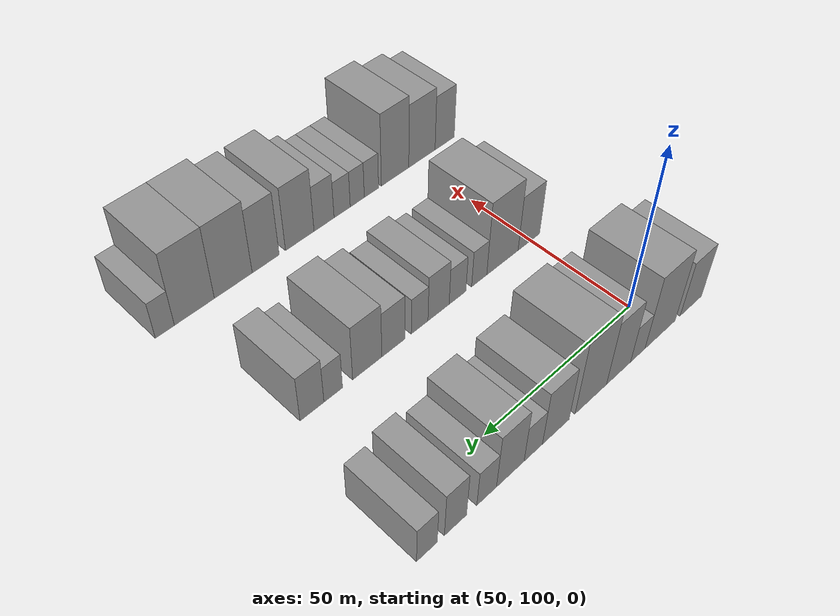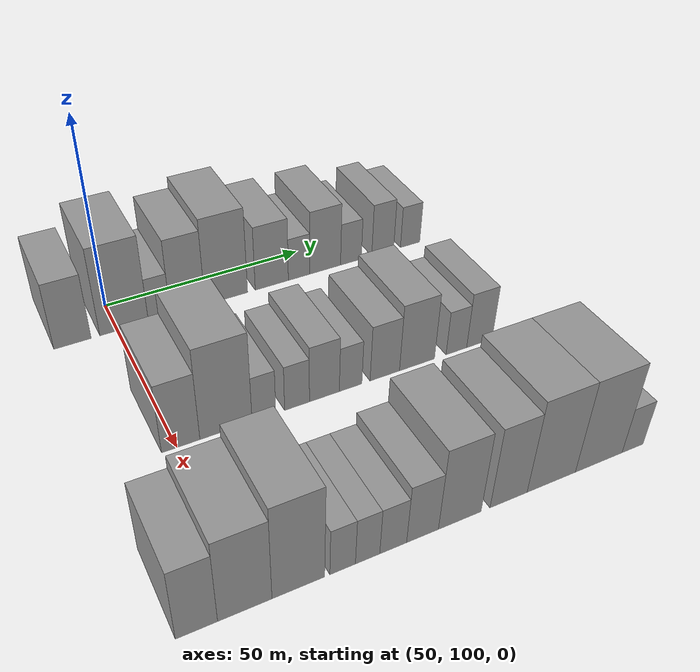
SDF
<sdf version="1.6">
 <world name="default">
  <model name="building_56">
   <static>1</static>
   <pose>50.0000 89.5916 0 0.000000 0.000000 0.000000</pose>
   <link name="link">
    <pose>0 0 9.00 0 0 0</pose>
    <collision name="collision"><geometry><box><size>20.0000 8.5362 18.0000</size></box></geometry></collision>
    <visual name="visual">
     <cast_shadows>0</cast_shadows>
     <geometry><box><size>20.0000 8.5362 18.0000</size></box></geometry>
     <material>
      <script>
       <uri>model://grey_wall/materials/scripts</uri>
       <uri>model://grey_wall/materials/textures</uri>
       <name>vrc/grey_wall</name>
      </script>
     </material>
    </visual>
   </link>
  </model>
  <model name="building_57">
   <static>1</static>
   <pose>50.0000 101.6315 0 0.000000 0.000000 0.000000</pose>
   <link name="link">
    <pose>0 0 12.00 0 0 0</pose>
    <collision name="collision"><geometry><box><size>20.0000 11.5437 24.0000</size></box></geometry></collision>
    <visual name="visual">
     <cast_shadows>0</cast_shadows>
     <geometry><box><size>20.0000 11.5437 24.0000</size></box></geometry>
     <material>
      <script>
       <uri>model://grey_wall/materials/scripts</uri>
       <uri>model://grey_wall/materials/textures</uri>
       <name>vrc/grey_wall</name>
      </script>
     </material>
    </visual>
   </link>
  </model>
  <model name="building_58">
   <static>1</static>
   <pose>50.0000 110.0835 0 0.000000 0.000000 0.000000</pose>
   <link name="link">
    <pose>0 0 6.00 0 0 0</pose>
    <collision name="collision"><geometry><box><size>20.0000 5.3604 12.0000</size></box></geometry></collision>
    <visual name="visual">
     <cast_shadows>0</cast_shadows>
     <geometry><box><size>20.0000 5.3604 12.0000</size></box></geometry>
     <material>
      <script>
       <uri>model://grey_wall/materials/scripts</uri>
       <uri>model://grey_wall/materials/textures</uri>
       <name>vrc/grey_wall</name>
      </script>
     </material>
    </visual>
   </link>
  </model>
  <model name="building_59">
   <static>1</static>
   <pose>50.0000 117.0794 0 0.000000 0.000000 0.000000</pose>
   <link name="link">
    <pose>0 0 10.50 0 0 0</pose>
    <collision name="collision"><geometry><box><size>20.0000 8.6314 21.0000</size></box></geometry></collision>
    <visual name="visual">
     <cast_shadows>0</cast_shadows>
     <geometry><box><size>20.0000 8.6314 21.0000</size></box></geometry>
     <material>
      <script>
       <uri>model://grey_wall/materials/scripts</uri>
       <uri>model://grey_wall/materials/textures</uri>
       <name>vrc/grey_wall</name>
      </script>
     </material>
    </visual>
   </link>
  </model>
  <model name="building_60">
   <static>1</static>
   <pose>50.0000 126.8389 0 0.000000 0.000000 0.000000</pose>
   <link name="link">
    <pose>0 0 12.00 0 0 0</pose>
    <collision name="collision"><geometry><box><size>20.0000 10.8875 24.0000</size></box></geometry></collision>
    <visual name="visual">
     <cast_shadows>0</cast_shadows>
     <geometry><box><size>20.0000 10.8875 24.0000</size></box></geometry>
     <material>
      <script>
       <uri>model://grey_wall/materials/scripts</uri>
       <uri>model://grey_wall/materials/textures</uri>
       <name>vrc/grey_wall</name>
      </script>
     </material>
    </visual>
   </link>
  </model>
  <model name="building_61">
   <static>1</static>
   <pose>50.0000 138.6754 0 0.000000 0.000000 0.000000</pose>
   <link name="link">
    <pose>0 0 9.00 0 0 0</pose>
    <collision name="collision"><geometry><box><size>20.0000 8.7856 18.0000</size></box></geometry></collision>
    <visual name="visual">
     <cast_shadows>0</cast_shadows>
     <geometry><box><size>20.0000 8.7856 18.0000</size></box></geometry>
     <material>
      <script>
       <uri>model://grey_wall/materials/scripts</uri>
       <uri>model://grey_wall/materials/textures</uri>
       <name>vrc/grey_wall</name>
      </script>
     </material>
    </visual>
   </link>
  </model>
  <model name="building_62">
   <static>1</static>
   <pose>50.0000 145.9898 0 0.000000 0.000000 0.000000</pose>
   <link name="link">
    <pose>0 0 6.00 0 0 0</pose>
    <collision name="collision"><geometry><box><size>20.0000 5.8431 12.0000</size></box></geometry></collision>
    <visual name="visual">
     <cast_shadows>0</cast_shadows>
     <geometry><box><size>20.0000 5.8431 12.0000</size></box></geometry>
     <material>
      <script>
       <uri>model://grey_wall/materials/scripts</uri>
       <uri>model://grey_wall/materials/textures</uri>
       <name>vrc/grey_wall</name>
      </script>
     </material>
    </visual>
   </link>
  </model>
  <model name="building_63">
   <static>1</static>
   <pose>50.0000 153.1606 0 0.000000 0.000000 0.000000</pose>
   <link name="link">
    <pose>0 0 9.00 0 0 0</pose>
    <collision name="collision"><geometry><box><size>20.0000 8.4984 18.0000</size></box></geometry></collision>
    <visual name="visual">
     <cast_shadows>0</cast_shadows>
     <geometry><box><size>20.0000 8.4984 18.0000</size></box></geometry>
     <material>
      <script>
       <uri>model://grey_wall/materials/scripts</uri>
       <uri>model://grey_wall/materials/textures</uri>
       <name>vrc/grey_wall</name>
      </script>
     </material>
    </visual>
   </link>
  </model>
  <model name="building_64">
   <static>1</static>
   <pose>50.0000 160.3463 0 0.000000 0.000000 0.000000</pose>
   <link name="link">
    <pose>0 0 6.00 0 0 0</pose>
    <collision name="collision"><geometry><box><size>20.0000 5.8730 12.0000</size></box></geometry></collision>
    <visual name="visual">
     <cast_shadows>0</cast_shadows>
     <geometry><box><size>20.0000 5.8730 12.0000</size></box></geometry>
     <material>
      <script>
       <uri>model://grey_wall/materials/scripts</uri>
       <uri>model://grey_wall/materials/textures</uri>
       <name>vrc/grey_wall</name>
      </script>
     </material>
    </visual>
   </link>
  </model>
  <model name="building_65">
   <static>1</static>
   <pose>50.0000 169.4578 0 0.000000 0.000000 0.000000</pose>
   <link name="link">
    <pose>0 0 7.50 0 0 0</pose>
    <collision name="collision"><geometry><box><size>20.0000 6.3501 15.0000</size></box></geometry></collision>
    <visual name="visual">
     <cast_shadows>0</cast_shadows>
     <geometry><box><size>20.0000 6.3501 15.0000</size></box></geometry>
     <material>
      <script>
       <uri>model://grey_wall/materials/scripts</uri>
       <uri>model://grey_wall/materials/textures</uri>
       <name>vrc/grey_wall</name>
      </script>
     </material>
    </visual>
   </link>
  </model>
  <model name="building_66">
   <static>1</static>
   <pose>50.0000 177.4949 0 0.000000 0.000000 0.000000</pose>
   <link name="link">
    <pose>0 0 6.00 0 0 0</pose>
    <collision name="collision"><geometry><box><size>20.0000 5.7241 12.0000</size></box></geometry></collision>
    <visual name="visual">
     <cast_shadows>0</cast_shadows>
     <geometry><box><size>20.0000 5.7241 12.0000</size></box></geometry>
     <material>
      <script>
       <uri>model://grey_wall/materials/scripts</uri>
       <uri>model://grey_wall/materials/textures</uri>
       <name>vrc/grey_wall</name>
      </script>
     </material>
    </visual>
   </link>
  </model>
  <model name="building_145">
   <static>1</static>
   <pose>90.0000 100.8245 0 0.000000 0.000000 0.000000</pose>
   <link name="link">
    <pose>0 0 9.00 0 0 0</pose>
    <collision name="collision"><geometry><box><size>20.0000 8.1048 18.0000</size></box></geometry></collision>
    <visual name="visual">
     <cast_shadows>0</cast_shadows>
     <geometry><box><size>20.0000 8.1048 18.0000</size></box></geometry>
     <material>
      <script>
       <uri>model://grey_wall/materials/scripts</uri>
       <uri>model://grey_wall/materials/textures</uri>
       <name>vrc/grey_wall</name>
      </script>
     </material>
    </visual>
   </link>
  </model>
  <model name="building_146">
   <static>1</static>
   <pose>90.0000 110.5733 0 0.000000 0.000000 0.000000</pose>
   <link name="link">
    <pose>0 0 12.00 0 0 0</pose>
    <collision name="collision"><geometry><box><size>20.0000 11.3928 24.0000</size></box></geometry></collision>
    <visual name="visual">
     <cast_shadows>0</cast_shadows>
     <geometry><box><size>20.0000 11.3928 24.0000</size></box></geometry>
     <material>
      <script>
       <uri>model://grey_wall/materials/scripts</uri>
       <uri>model://grey_wall/materials/textures</uri>
       <name>vrc/grey_wall</name>
      </script>
     </material>
    </visual>
   </link>
  </model>
  <model name="building_147">
   <static>1</static>
   <pose>90.0000 118.9317 0 0.000000 0.000000 0.000000</pose>
   <link name="link">
    <pose>0 0 6.00 0 0 0</pose>
    <collision name="collision"><geometry><box><size>20.0000 5.3240 12.0000</size></box></geometry></collision>
    <visual name="visual">
     <cast_shadows>0</cast_shadows>
     <geometry><box><size>20.0000 5.3240 12.0000</size></box></geometry>
     <material>
      <script>
       <uri>model://grey_wall/materials/scripts</uri>
       <uri>model://grey_wall/materials/textures</uri>
       <name>vrc/grey_wall</name>
      </script>
     </material>
    </visual>
   </link>
  </model>
  <model name="building_148">
   <static>1</static>
   <pose>90.0000 126.4588 0 0.000000 0.000000 0.000000</pose>
   <link name="link">
    <pose>0 0 6.00 0 0 0</pose>
    <collision name="collision"><geometry><box><size>20.0000 5.7303 12.0000</size></box></geometry></collision>
    <visual name="visual">
     <cast_shadows>0</cast_shadows>
     <geometry><box><size>20.0000 5.7303 12.0000</size></box></geometry>
     <material>
      <script>
       <uri>model://grey_wall/materials/scripts</uri>
       <uri>model://grey_wall/materials/textures</uri>
       <name>vrc/grey_wall</name>
      </script>
     </material>
    </visual>
   </link>
  </model>
  <model name="building_149">
   <static>1</static>
   <pose>90.0000 132.8490 0 0.000000 0.000000 0.000000</pose>
   <link name="link">
    <pose>0 0 7.50 0 0 0</pose>
    <collision name="collision"><geometry><box><size>20.0000 7.0500 15.0000</size></box></geometry></collision>
    <visual name="visual">
     <cast_shadows>0</cast_shadows>
     <geometry><box><size>20.0000 7.0500 15.0000</size></box></geometry>
     <material>
      <script>
       <uri>model://grey_wall/materials/scripts</uri>
       <uri>model://grey_wall/materials/textures</uri>
       <name>vrc/grey_wall</name>
      </script>
     </material>
    </visual>
   </link>
  </model>
  <model name="building_150">
   <static>1</static>
   <pose>90.0000 139.0963 0 0.000000 0.000000 0.000000</pose>
   <link name="link">
    <pose>0 0 6.00 0 0 0</pose>
    <collision name="collision"><geometry><box><size>20.0000 5.4446 12.0000</size></box></geometry></collision>
    <visual name="visual">
     <cast_shadows>0</cast_shadows>
     <geometry><box><size>20.0000 5.4446 12.0000</size></box></geometry>
     <material>
      <script>
       <uri>model://grey_wall/materials/scripts</uri>
       <uri>model://grey_wall/materials/textures</uri>
       <name>vrc/grey_wall</name>
      </script>
     </material>
    </visual>
   </link>
  </model>
  <model name="building_151">
   <static>1</static>
   <pose>90.0000 147.4627 0 0.000000 0.000000 0.000000</pose>
   <link name="link">
    <pose>0 0 7.50 0 0 0</pose>
    <collision name="collision"><geometry><box><size>20.0000 7.2884 15.0000</size></box></geometry></collision>
    <visual name="visual">
     <cast_shadows>0</cast_shadows>
     <geometry><box><size>20.0000 7.2884 15.0000</size></box></geometry>
     <material>
      <script>
       <uri>model://grey_wall/materials/scripts</uri>
       <uri>model://grey_wall/materials/textures</uri>
       <name>vrc/grey_wall</name>
      </script>
     </material>
    </visual>
   </link>
  </model>
  <model name="building_152">
   <static>1</static>
   <pose>90.0000 155.5599 0 0.000000 0.000000 0.000000</pose>
   <link name="link">
    <pose>0 0 9.00 0 0 0</pose>
    <collision name="collision"><geometry><box><size>20.0000 8.9059 18.0000</size></box></geometry></collision>
    <visual name="visual">
     <cast_shadows>0</cast_shadows>
     <geometry><box><size>20.0000 8.9059 18.0000</size></box></geometry>
     <material>
      <script>
       <uri>model://grey_wall/materials/scripts</uri>
       <uri>model://grey_wall/materials/textures</uri>
       <name>vrc/grey_wall</name>
      </script>
     </material>
    </visual>
   </link>
  </model>
  <model name="building_153">
   <static>1</static>
   <pose>90.0000 165.7264 0 0.000000 0.000000 0.000000</pose>
   <link name="link">
    <pose>0 0 6.00 0 0 0</pose>
    <collision name="collision"><geometry><box><size>20.0000 5.4270 12.0000</size></box></geometry></collision>
    <visual name="visual">
     <cast_shadows>0</cast_shadows>
     <geometry><box><size>20.0000 5.4270 12.0000</size></box></geometry>
     <material>
      <script>
       <uri>model://grey_wall/materials/scripts</uri>
       <uri>model://grey_wall/materials/textures</uri>
       <name>vrc/grey_wall</name>
      </script>
     </material>
    </visual>
   </link>
  </model>
  <model name="building_154">
   <static>1</static>
   <pose>90.0000 171.8518 0 0.000000 0.000000 0.000000</pose>
   <link name="link">
    <pose>0 0 7.50 0 0 0</pose>
    <collision name="collision"><geometry><box><size>20.0000 6.8237 15.0000</size></box></geometry></collision>
    <visual name="visual">
     <cast_shadows>0</cast_shadows>
     <geometry><box><size>20.0000 6.8237 15.0000</size></box></geometry>
     <material>
      <script>
       <uri>model://grey_wall/materials/scripts</uri>
       <uri>model://grey_wall/materials/textures</uri>
       <name>vrc/grey_wall</name>
      </script>
     </material>
    </visual>
   </link>
  </model>
  <model name="building_226">
   <static>1</static>
   <pose>130.0000 89.0867 0 0.000000 0.000000 0.000000</pose>
   <link name="link">
    <pose>0 0 9.00 0 0 0</pose>
    <collision name="collision"><geometry><box><size>20.0000 7.4645 18.0000</size></box></geometry></collision>
    <visual name="visual">
     <cast_shadows>0</cast_shadows>
     <geometry><box><size>20.0000 7.4645 18.0000</size></box></geometry>
     <material>
      <script>
       <uri>model://grey_wall/materials/scripts</uri>
       <uri>model://grey_wall/materials/textures</uri>
       <name>vrc/grey_wall</name>
      </script>
     </material>
    </visual>
   </link>
  </model>
  <model name="building_227">
   <static>1</static>
   <pose>130.0000 97.7949 0 0.000000 0.000000 0.000000</pose>
   <link name="link">
    <pose>0 0 10.50 0 0 0</pose>
    <collision name="collision"><geometry><box><size>20.0000 9.9520 21.0000</size></box></geometry></collision>
    <visual name="visual">
     <cast_shadows>0</cast_shadows>
     <geometry><box><size>20.0000 9.9520 21.0000</size></box></geometry>
     <material>
      <script>
       <uri>model://grey_wall/materials/scripts</uri>
       <uri>model://grey_wall/materials/textures</uri>
       <name>vrc/grey_wall</name>
      </script>
     </material>
    </visual>
   </link>
  </model>
  <model name="building_228">
   <static>1</static>
   <pose>130.0000 107.8044 0 0.000000 0.000000 0.000000</pose>
   <link name="link">
    <pose>0 0 12.00 0 0 0</pose>
    <collision name="collision"><geometry><box><size>20.0000 10.0669 24.0000</size></box></geometry></collision>
    <visual name="visual">
     <cast_shadows>0</cast_shadows>
     <geometry><box><size>20.0000 10.0669 24.0000</size></box></geometry>
     <material>
      <script>
       <uri>model://grey_wall/materials/scripts</uri>
       <uri>model://grey_wall/materials/textures</uri>
       <name>vrc/grey_wall</name>
      </script>
     </material>
    </visual>
   </link>
  </model>
  <model name="building_229">
   <static>1</static>
   <pose>130.0000 116.3673 0 0.000000 0.000000 0.000000</pose>
   <link name="link">
    <pose>0 0 6.00 0 0 0</pose>
    <collision name="collision"><geometry><box><size>20.0000 5.0588 12.0000</size></box></geometry></collision>
    <visual name="visual">
     <cast_shadows>0</cast_shadows>
     <geometry><box><size>20.0000 5.0588 12.0000</size></box></geometry>
     <material>
      <script>
       <uri>model://grey_wall/materials/scripts</uri>
       <uri>model://grey_wall/materials/textures</uri>
       <name>vrc/grey_wall</name>
      </script>
     </material>
    </visual>
   </link>
  </model>
  <model name="building_230">
   <static>1</static>
   <pose>130.0000 121.3518 0 0.000000 0.000000 0.000000</pose>
   <link name="link">
    <pose>0 0 6.00 0 0 0</pose>
    <collision name="collision"><geometry><box><size>20.0000 4.9102 12.0000</size></box></geometry></collision>
    <visual name="visual">
     <cast_shadows>0</cast_shadows>
     <geometry><box><size>20.0000 4.9102 12.0000</size></box></geometry>
     <material>
      <script>
       <uri>model://grey_wall/materials/scripts</uri>
       <uri>model://grey_wall/materials/textures</uri>
       <name>vrc/grey_wall</name>
      </script>
     </material>
    </visual>
   </link>
  </model>
  <model name="building_231">
   <static>1</static>
   <pose>130.0000 126.5766 0 0.000000 0.000000 0.000000</pose>
   <link name="link">
    <pose>0 0 6.00 0 0 0</pose>
    <collision name="collision"><geometry><box><size>20.0000 5.5394 12.0000</size></box></geometry></collision>
    <visual name="visual">
     <cast_shadows>0</cast_shadows>
     <geometry><box><size>20.0000 5.5394 12.0000</size></box></geometry>
     <material>
      <script>
       <uri>model://grey_wall/materials/scripts</uri>
       <uri>model://grey_wall/materials/textures</uri>
       <name>vrc/grey_wall</name>
      </script>
     </material>
    </visual>
   </link>
  </model>
  <model name="building_232">
   <static>1</static>
   <pose>130.0000 132.7032 0 0.000000 0.000000 0.000000</pose>
   <link name="link">
    <pose>0 0 7.50 0 0 0</pose>
    <collision name="collision"><geometry><box><size>20.0000 6.7139 15.0000</size></box></geometry></collision>
    <visual name="visual">
     <cast_shadows>0</cast_shadows>
     <geometry><box><size>20.0000 6.7139 15.0000</size></box></geometry>
     <material>
      <script>
       <uri>model://grey_wall/materials/scripts</uri>
       <uri>model://grey_wall/materials/textures</uri>
       <name>vrc/grey_wall</name>
      </script>
     </material>
    </visual>
   </link>
  </model>
  <model name="building_233">
   <static>1</static>
   <pose>130.0000 140.7101 0 0.000000 0.000000 0.000000</pose>
   <link name="link">
    <pose>0 0 10.50 0 0 0</pose>
    <collision name="collision"><geometry><box><size>20.0000 9.3000 21.0000</size></box></geometry></collision>
    <visual name="visual">
     <cast_shadows>0</cast_shadows>
     <geometry><box><size>20.0000 9.3000 21.0000</size></box></geometry>
     <material>
      <script>
       <uri>model://grey_wall/materials/scripts</uri>
       <uri>model://grey_wall/materials/textures</uri>
       <name>vrc/grey_wall</name>
      </script>
     </material>
    </visual>
   </link>
  </model>
  <model name="building_234">
   <static>1</static>
   <pose>130.0000 151.5798 0 0.000000 0.000000 0.000000</pose>
   <link name="link">
    <pose>0 0 10.50 0 0 0</pose>
    <collision name="collision"><geometry><box><size>20.0000 8.4392 21.0000</size></box></geometry></collision>
    <visual name="visual">
     <cast_shadows>0</cast_shadows>
     <geometry><box><size>20.0000 8.4392 21.0000</size></box></geometry>
     <material>
      <script>
       <uri>model://grey_wall/materials/scripts</uri>
       <uri>model://grey_wall/materials/textures</uri>
       <name>vrc/grey_wall</name>
      </script>
     </material>
    </visual>
   </link>
  </model>
  <model name="building_235">
   <static>1</static>
   <pose>130.0000 161.4988 0 0.000000 0.000000 0.000000</pose>
   <link name="link">
    <pose>0 0 12.00 0 0 0</pose>
    <collision name="collision"><geometry><box><size>20.0000 11.3988 24.0000</size></box></geometry></collision>
    <visual name="visual">
     <cast_shadows>0</cast_shadows>
     <geometry><box><size>20.0000 11.3988 24.0000</size></box></geometry>
     <material>
      <script>
       <uri>model://grey_wall/materials/scripts</uri>
       <uri>model://grey_wall/materials/textures</uri>
       <name>vrc/grey_wall</name>
      </script>
     </material>
    </visual>
   </link>
  </model>
  <model name="building_236">
   <static>1</static>
   <pose>130.0000 172.9490 0 0.000000 0.000000 0.000000</pose>
   <link name="link">
    <pose>0 0 12.00 0 0 0</pose>
    <collision name="collision"><geometry><box><size>20.0000 11.5018 24.0000</size></box></geometry></collision>
    <visual name="visual">
     <cast_shadows>0</cast_shadows>
     <geometry><box><size>20.0000 11.5018 24.0000</size></box></geometry>
     <material>
      <script>
       <uri>model://grey_wall/materials/scripts</uri>
       <uri>model://grey_wall/materials/textures</uri>
       <name>vrc/grey_wall</name>
      </script>
     </material>
    </visual>
   </link>
  </model>
  <model name="building_237">
   <static>1</static>
   <pose>130.0000 181.3680 0 0.000000 0.000000 0.000000</pose>
   <link name="link">
    <pose>0 0 6.00 0 0 0</pose>
    <collision name="collision"><geometry><box><size>20.0000 5.3362 12.0000</size></box></geometry></collision>
    <visual name="visual">
     <cast_shadows>0</cast_shadows>
     <geometry><box><size>20.0000 5.3362 12.0000</size></box></geometry>
     <material>
      <script>
       <uri>model://grey_wall/materials/scripts</uri>
       <uri>model://grey_wall/materials/textures</uri>
       <name>vrc/grey_wall</name>
      </script>
     </material>
    </visual>
   </link>
  </model>
 </world>
</sdf>
